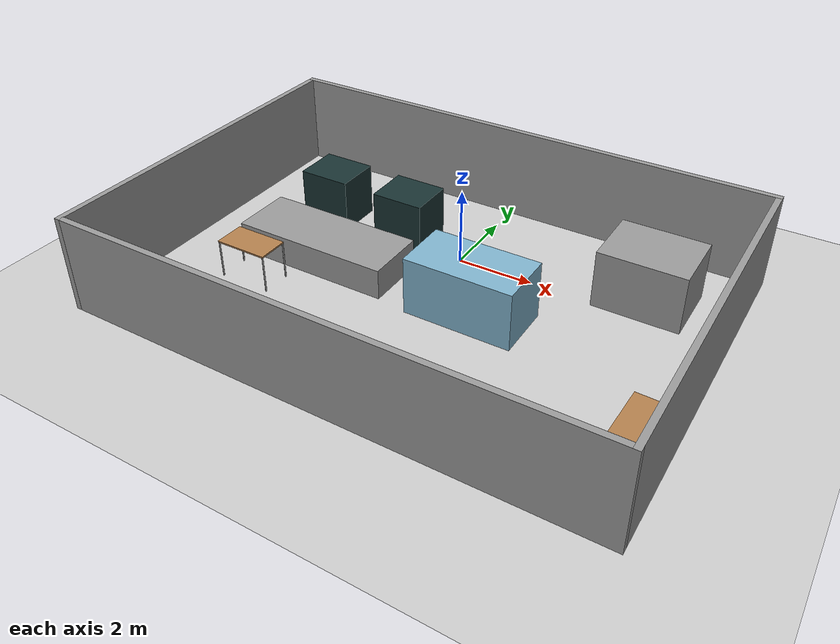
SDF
<sdf version="1.6">
 <world name="default">
  <light name="sun" type="directional">
   <pose>0 0 10 0 -0 0</pose>
   <diffuse>0.8 0.8 0.8 1</diffuse>
   <specular>0.1 0.1 0.1 1</specular>
   <attenuation>
    <range>1000</range>
    <constant>0.9</constant>
    <linear>0.01</linear>
    <quadratic>0.001</quadratic>
   </attenuation>
   <direction>-0.5 0.5 -1</direction>
  </light>
  <model name="ground_plane">
   <static>1</static>
   <link name="link">
    <collision name="collision">
     <geometry><plane><normal>0 0 1</normal><size>100 100</size></plane></geometry>
     <surface><friction><ode><mu>100</mu><mu2>50</mu2></ode></friction></surface>
    </collision>
    <visual name="visual">
     <cast_shadows>0</cast_shadows>
     <geometry><plane><normal>0 0 1</normal><size>100 100</size></plane></geometry>
     <material>
      <script><uri>file://media/materials/scripts/gazebo.material</uri><name>Gazebo/Grey</name></script>
     </material>
    </visual>
   </link>
  </model>
  <gravity>0 0 -9.8</gravity>
  <magnetic_field>6e-06 2.3e-05 -4.2e-05</magnetic_field>
  <atmosphere type="adiabatic"/>
  <physics name="default_physics" default="0" type="ode">
   <max_step_size>0.001</max_step_size>
   <real_time_factor>1</real_time_factor>
   <real_time_update_rate>1000</real_time_update_rate>
  </physics>
  <scene><ambient>0.4 0.4 0.4 1</ambient><background>0.7 0.7 0.7 1</background><shadows>1</shadows></scene>
  <spherical_coordinates>
   <surface_model>EARTH_WGS84</surface_model>
   <latitude_deg>0</latitude_deg>
   <longitude_deg>0</longitude_deg>
   <elevation>0</elevation>
   <heading_deg>0</heading_deg>
  </spherical_coordinates>
  <model name="table">
   <static>0</static>
   <link name="link">
    <collision name="surface">
     <pose>0 0 1 0 -0 0</pose>
     <geometry><box><size>1.5 0.8 0.03</size></box></geometry>
     <surface><friction><ode><mu>0.6</mu><mu2>0.6</mu2></ode></friction></surface>
    </collision>
    <visual name="visual1">
     <pose>0 0 1 0 -0 0</pose>
     <geometry><box><size>1.4 0.8 0.04</size></box></geometry>
     <material>
      <script><uri>file://media/materials/scripts/gazebo.material</uri><name>Gazebo/Wood</name></script>
     </material>
    </visual>
    <collision name="front_left_leg">
     <pose>0.68 0.38 0.5 0 -0 0</pose>
     <geometry><cylinder><radius>0.02</radius><length>1</length></cylinder></geometry>
    </collision>
    <visual name="front_left_leg">
     <pose>0.68 0.38 0.5 0 -0 0</pose>
     <geometry><cylinder><radius>0.02</radius><length>1</length></cylinder></geometry>
     <material>
      <script><uri>file://media/materials/scripts/gazebo.material</uri><name>Gazebo/Grey</name></script>
     </material>
    </visual>
    <collision name="front_right_leg">
     <pose>0.68 -0.38 0.5 0 -0 0</pose>
     <geometry><cylinder><radius>0.02</radius><length>1</length></cylinder></geometry>
    </collision>
    <visual name="front_right_leg">
     <pose>0.68 -0.38 0.5 0 -0 0</pose>
     <geometry><cylinder><radius>0.02</radius><length>1</length></cylinder></geometry>
     <material>
      <script><uri>file://media/materials/scripts/gazebo.material</uri><name>Gazebo/Grey</name></script>
     </material>
    </visual>
    <collision name="back_right_leg">
     <pose>-0.68 -0.38 0.5 0 -0 0</pose>
     <geometry><cylinder><radius>0.02</radius><length>1</length></cylinder></geometry>
    </collision>
    <visual name="back_right_leg">
     <pose>-0.68 -0.38 0.5 0 -0 0</pose>
     <geometry><cylinder><radius>0.02</radius><length>1</length></cylinder></geometry>
     <material>
      <script><uri>file://media/materials/scripts/gazebo.material</uri><name>Gazebo/Grey</name></script>
     </material>
    </visual>
    <collision name="back_left_leg">
     <pose>-0.68 0.38 0.5 0 -0 0</pose>
     <geometry><cylinder><radius>0.02</radius><length>1</length></cylinder></geometry>
    </collision>
    <visual name="back_left_leg">
     <pose>-0.68 0.38 0.5 0 -0 0</pose>
     <geometry><cylinder><radius>0.02</radius><length>1</length></cylinder></geometry>
     <material>
      <script><uri>file://media/materials/scripts/gazebo.material</uri><name>Gazebo/Grey</name></script>
     </material>
    </visual>
    <inertial>
     <inertia><ixx>1</ixx><ixy>0</ixy><ixz>0</ixz><iyy>1</iyy><iyz>0</iyz><izz>1</izz></inertia>
     <mass>1</mass>
    </inertial>
   </link>
   <pose>-4.07966 -3.28725 0 0 -0 0</pose>
  </model>
  <model name="Untitled">
   <pose>0.05186 -1.78661 0 0 -0 0</pose>
   <link name="Wall_49">
    <collision name="Wall_49_Collision">
     <geometry><box><size>9.5 0.15 2.5</size></box></geometry>
     <pose>0 0 1.25 0 -0 0</pose>
    </collision>
    <visual name="Wall_49_Visual">
     <pose>0 0 1.25 0 -0 0</pose>
     <geometry><box><size>9.5 0.15 2.5</size></box></geometry>
     <material>
      <script><uri>file://media/materials/scripts/gazebo.material</uri><name>Gazebo/Grey</name></script>
      <ambient>1 1 1 1</ambient>
     </material>
    </visual>
    <pose>-6.8 0 0 0 -0 1.5708</pose>
   </link>
   <link name="Wall_50">
    <collision name="Wall_50_Collision">
     <geometry><box><size>13.75 0.15 2.5</size></box></geometry>
     <pose>0 0 1.25 0 -0 0</pose>
    </collision>
    <visual name="Wall_50_Visual">
     <pose>0 0 1.25 0 -0 0</pose>
     <geometry><box><size>13.75 0.15 2.5</size></box></geometry>
     <material>
      <script><uri>file://media/materials/scripts/gazebo.material</uri><name>Gazebo/Grey</name></script>
      <ambient>1 1 1 1</ambient>
     </material>
    </visual>
    <pose>0 4.675 0 0 -0 0</pose>
   </link>
   <link name="Wall_51">
    <collision name="Wall_51_Collision">
     <geometry><box><size>9.5 0.15 2.5</size></box></geometry>
     <pose>0 0 1.25 0 -0 0</pose>
    </collision>
    <visual name="Wall_51_Visual">
     <pose>0 0 1.25 0 -0 0</pose>
     <geometry><box><size>9.5 0.15 2.5</size></box></geometry>
     <material>
      <script><uri>file://media/materials/scripts/gazebo.material</uri><name>Gazebo/Grey</name></script>
      <ambient>1 1 1 1</ambient>
     </material>
    </visual>
    <pose>6.8 0 0 0 0 -1.5708</pose>
   </link>
   <link name="Wall_52">
    <collision name="Wall_52_Collision">
     <geometry><box><size>13.75 0.15 2.5</size></box></geometry>
     <pose>0 0 1.25 0 -0 0</pose>
    </collision>
    <visual name="Wall_52_Visual">
     <pose>0 0 1.25 0 -0 0</pose>
     <geometry><box><size>13.75 0.15 2.5</size></box></geometry>
     <material>
      <script><uri>file://media/materials/scripts/gazebo.material</uri><name>Gazebo/Grey</name></script>
      <ambient>1 1 1 1</ambient>
     </material>
    </visual>
    <pose>0 -4.675 0 0 -0 3.14159</pose>
   </link>
   <static>1</static>
  </model>
  <model name="MC1">
   <link name="link_3">
    <pose>-1e-06 0 0 0 -0 0</pose>
    <inertial>
     <mass>1</mass>
     <inertia>
      <ixx>0.166667</ixx>
      <ixy>0</ixy>
      <ixz>0</ixz>
      <iyy>0.166667</iyy>
      <iyz>0</iyz>
      <izz>0.166667</izz>
     </inertia>
    </inertial>
    <visual name="visual">
     <geometry><box><size>2.2 1.7 2</size></box></geometry>
     <material>
      <lighting>1</lighting>
      <script><uri>file://media/materials/scripts/gazebo.material</uri><name>Gazebo/Grey</name></script>
      <ambient>0.3 0.3 0.3 1</ambient>
      <diffuse>0.7 0.7 0.7 1</diffuse>
      <specular>0.01 0.01 0.01 1</specular>
      <emissive>0 0 0 1</emissive>
      <shader type="vertex"><normal_map>__default__</normal_map></shader>
     </material>
    </visual>
    <collision name="collision">
     <geometry><box><size>2.2 1.7 2</size></box></geometry>
     <surface>
      <friction>
       <ode><mu>1</mu><mu2>1</mu2><fdir1>0 0 0</fdir1><slip1>0</slip1><slip2>0</slip2></ode>
       <torsional>
        <coefficient>1</coefficient>
        <patch_radius>0</patch_radius>
        <surface_radius>0</surface_radius>
        <use_patch_radius>1</use_patch_radius>
        <ode><slip>0</slip></ode>
       </torsional>
      </friction>
      <bounce><restitution_coefficient>0</restitution_coefficient><threshold>1e+06</threshold></bounce>
      <contact>
       <collide_without_contact>0</collide_without_contact>
       <collide_without_contact_bitmask>1</collide_without_contact_bitmask>
       <collide_bitmask>1</collide_bitmask>
       <ode>
        <soft_cfm>0</soft_cfm>
        <soft_erp>0.2</soft_erp>
        <kp>1e+13</kp>
        <kd>1</kd>
        <max_vel>0.01</max_vel>
        <min_depth>0</min_depth>
       </ode>
       <bullet>
        <split_impulse>1</split_impulse>
        <split_impulse_penetration_threshold>-0.01</split_impulse_penetration_threshold>
        <soft_cfm>0</soft_cfm>
        <soft_erp>0.2</soft_erp>
        <kp>1e+13</kp>
        <kd>1</kd>
       </bullet>
      </contact>
     </surface>
    </collision>
   </link>
   <static>0</static>
   <pose>4.69294 0.810814 0.5 0 -0 0</pose>
  </model>
  <model name="conveyor">
   <link name="link_4">
    <inertial>
     <mass>1</mass>
     <inertia>
      <ixx>0.166667</ixx>
      <ixy>0</ixy>
      <ixz>0</ixz>
      <iyy>0.166667</iyy>
      <iyz>0</iyz>
      <izz>0.166667</izz>
     </inertia>
    </inertial>
    <visual name="visual">
     <geometry><box><size>4.2 1.6 0.8</size></box></geometry>
     <material>
      <lighting>1</lighting>
      <script><uri>file://media/materials/scripts/gazebo.material</uri><name>Gazebo/Grey</name></script>
      <ambient>0.3 0.3 0.3 1</ambient>
      <diffuse>0.7 0.7 0.7 1</diffuse>
      <specular>0.01 0.01 0.01 1</specular>
      <emissive>0 0 0 1</emissive>
      <shader type="vertex"><normal_map>__default__</normal_map></shader>
     </material>
    </visual>
    <collision name="collision">
     <geometry><box><size>4.2 1.6 0.8</size></box></geometry>
     <surface>
      <friction>
       <ode><mu>1</mu><mu2>1</mu2><fdir1>0 0 0</fdir1><slip1>0</slip1><slip2>0</slip2></ode>
       <torsional>
        <coefficient>1</coefficient>
        <patch_radius>0</patch_radius>
        <surface_radius>0</surface_radius>
        <use_patch_radius>1</use_patch_radius>
        <ode><slip>0</slip></ode>
       </torsional>
      </friction>
      <bounce><restitution_coefficient>0</restitution_coefficient><threshold>1e+06</threshold></bounce>
      <contact>
       <collide_without_contact>0</collide_without_contact>
       <collide_without_contact_bitmask>1</collide_without_contact_bitmask>
       <collide_bitmask>1</collide_bitmask>
       <ode>
        <soft_cfm>0</soft_cfm>
        <soft_erp>0.2</soft_erp>
        <kp>1e+13</kp>
        <kd>1</kd>
        <max_vel>0.01</max_vel>
        <min_depth>0</min_depth>
       </ode>
       <bullet>
        <split_impulse>1</split_impulse>
        <split_impulse_penetration_threshold>-0.01</split_impulse_penetration_threshold>
        <soft_cfm>0</soft_cfm>
        <soft_erp>0.2</soft_erp>
        <kp>1e+13</kp>
        <kd>1</kd>
       </bullet>
      </contact>
     </surface>
    </collision>
   </link>
   <static>0</static>
   <pose>-2.88732 -1.81161 0.5 0 -0 0</pose>
  </model>
  <model name="ASRS">
   <link name="link_5">
    <inertial>
     <mass>1</mass>
     <inertia>
      <ixx>0.166667</ixx>
      <ixy>0</ixy>
      <ixz>0</ixz>
      <iyy>0.166667</iyy>
      <iyz>0</iyz>
      <izz>0.166667</izz>
     </inertia>
    </inertial>
    <visual name="visual">
     <geometry><box><size>2.8 1.5 2</size></box></geometry>
     <material>
      <lighting>1</lighting>
      <script><uri>file://media/materials/scripts/gazebo.material</uri><name>Gazebo/Grey</name></script>
      <ambient>0.5 0.7 0.8 1</ambient>
      <diffuse>0.7 0.7 0.7 1</diffuse>
      <specular>0.01 0.01 0.01 1</specular>
      <emissive>0 0 0 1</emissive>
      <shader type="vertex"><normal_map>__default__</normal_map></shader>
     </material>
    </visual>
    <collision name="collision">
     <geometry><box><size>2.8 1.5 2</size></box></geometry>
     <surface>
      <friction>
       <ode><mu>1</mu><mu2>1</mu2><fdir1>0 0 0</fdir1><slip1>0</slip1><slip2>0</slip2></ode>
       <torsional>
        <coefficient>1</coefficient>
        <patch_radius>0</patch_radius>
        <surface_radius>0</surface_radius>
        <use_patch_radius>1</use_patch_radius>
        <ode><slip>0</slip></ode>
       </torsional>
      </friction>
      <bounce><restitution_coefficient>0</restitution_coefficient><threshold>1e+06</threshold></bounce>
      <contact>
       <collide_without_contact>0</collide_without_contact>
       <collide_without_contact_bitmask>1</collide_without_contact_bitmask>
       <collide_bitmask>1</collide_bitmask>
       <ode>
        <soft_cfm>0</soft_cfm>
        <soft_erp>0.2</soft_erp>
        <kp>1e+13</kp>
        <kd>1</kd>
        <max_vel>0.01</max_vel>
        <min_depth>0</min_depth>
       </ode>
       <bullet>
        <split_impulse>1</split_impulse>
        <split_impulse_penetration_threshold>-0.01</split_impulse_penetration_threshold>
        <soft_cfm>0</soft_cfm>
        <soft_erp>0.2</soft_erp>
        <kp>1e+13</kp>
        <kd>1</kd>
       </bullet>
      </contact>
     </surface>
    </collision>
   </link>
   <static>0</static>
   <pose>1.31595 -1.85611 0.5 0 -0 0</pose>
  </model>
  <model name="table_0">
   <static>0</static>
   <link name="link">
    <collision name="surface">
     <pose>0 0 1 0 -0 0</pose>
     <geometry><box><size>1.5 0.8 0.03</size></box></geometry>
     <surface><friction><ode><mu>0.6</mu><mu2>0.6</mu2></ode></friction></surface>
    </collision>
    <visual name="visual1">
     <pose>0 0 1 0 -0 0</pose>
     <geometry><box><size>1.4 0.8 0.04</size></box></geometry>
     <material>
      <script><uri>file://media/materials/scripts/gazebo.material</uri><name>Gazebo/Wood</name></script>
     </material>
    </visual>
    <collision name="front_left_leg">
     <pose>0.68 0.38 0.5 0 -0 0</pose>
     <geometry><cylinder><radius>0.02</radius><length>1</length></cylinder></geometry>
    </collision>
    <visual name="front_left_leg">
     <pose>0.68 0.38 0.5 0 -0 0</pose>
     <geometry><cylinder><radius>0.02</radius><length>1</length></cylinder></geometry>
     <material>
      <script><uri>file://media/materials/scripts/gazebo.material</uri><name>Gazebo/Grey</name></script>
     </material>
    </visual>
    <collision name="front_right_leg">
     <pose>0.68 -0.38 0.5 0 -0 0</pose>
     <geometry><cylinder><radius>0.02</radius><length>1</length></cylinder></geometry>
    </collision>
    <visual name="front_right_leg">
     <pose>0.68 -0.38 0.5 0 -0 0</pose>
     <geometry><cylinder><radius>0.02</radius><length>1</length></cylinder></geometry>
     <material>
      <script><uri>file://media/materials/scripts/gazebo.material</uri><name>Gazebo/Grey</name></script>
     </material>
    </visual>
    <collision name="back_right_leg">
     <pose>-0.68 -0.38 0.5 0 -0 0</pose>
     <geometry><cylinder><radius>0.02</radius><length>1</length></cylinder></geometry>
    </collision>
    <visual name="back_right_leg">
     <pose>-0.68 -0.38 0.5 0 -0 0</pose>
     <geometry><cylinder><radius>0.02</radius><length>1</length></cylinder></geometry>
     <material>
      <script><uri>file://media/materials/scripts/gazebo.material</uri><name>Gazebo/Grey</name></script>
     </material>
    </visual>
    <collision name="back_left_leg">
     <pose>-0.68 0.38 0.5 0 -0 0</pose>
     <geometry><cylinder><radius>0.02</radius><length>1</length></cylinder></geometry>
    </collision>
    <visual name="back_left_leg">
     <pose>-0.68 0.38 0.5 0 -0 0</pose>
     <geometry><cylinder><radius>0.02</radius><length>1</length></cylinder></geometry>
     <material>
      <script><uri>file://media/materials/scripts/gazebo.material</uri><name>Gazebo/Grey</name></script>
     </material>
    </visual>
    <inertial>
     <inertia><ixx>1</ixx><ixy>0</ixy><ixz>0</ixz><iyy>1</iyy><iyz>0</iyz><izz>1</izz></inertia>
     <mass>1</mass>
    </inertial>
   </link>
   <pose>6.27922 -4.29907 0 -0.003528 -0.00011 -1.60192</pose>
  </model>
  <model name="machine">
   <link name="link_6">
    <inertial>
     <mass>1</mass>
     <inertia>
      <ixx>0.166667</ixx>
      <ixy>0</ixy>
      <ixz>0</ixz>
      <iyy>0.166667</iyy>
      <iyz>0</iyz>
      <izz>0.166667</izz>
     </inertia>
    </inertial>
    <visual name="visual">
     <geometry><box><size>1.4 1.2 1.8</size></box></geometry>
     <material>
      <lighting>1</lighting>
      <script><uri>file://media/materials/scripts/gazebo.material</uri><name>Gazebo/Grey</name></script>
      <ambient>0.1 0.2 0.2 1</ambient>
      <diffuse>0.7 0.7 0.7 1</diffuse>
      <specular>0.01 0.01 0.01 1</specular>
      <emissive>0 0 0 1</emissive>
      <shader type="vertex"><normal_map>__default__</normal_map></shader>
     </material>
    </visual>
    <collision name="collision">
     <geometry><box><size>1.4 1.2 1.8</size></box></geometry>
     <surface>
      <friction>
       <ode><mu>1</mu><mu2>1</mu2><fdir1>0 0 0</fdir1><slip1>0</slip1><slip2>0</slip2></ode>
       <torsional>
        <coefficient>1</coefficient>
        <patch_radius>0</patch_radius>
        <surface_radius>0</surface_radius>
        <use_patch_radius>1</use_patch_radius>
        <ode><slip>0</slip></ode>
       </torsional>
      </friction>
      <bounce><restitution_coefficient>0</restitution_coefficient><threshold>1e+06</threshold></bounce>
      <contact>
       <collide_without_contact>0</collide_without_contact>
       <collide_without_contact_bitmask>1</collide_without_contact_bitmask>
       <collide_bitmask>1</collide_bitmask>
       <ode>
        <soft_cfm>0</soft_cfm>
        <soft_erp>0.2</soft_erp>
        <kp>1e+13</kp>
        <kd>1</kd>
        <max_vel>0.01</max_vel>
        <min_depth>0</min_depth>
       </ode>
       <bullet>
        <split_impulse>1</split_impulse>
        <split_impulse_penetration_threshold>-0.01</split_impulse_penetration_threshold>
        <soft_cfm>0</soft_cfm>
        <soft_erp>0.2</soft_erp>
        <kp>1e+13</kp>
        <kd>1</kd>
       </bullet>
      </contact>
     </surface>
    </collision>
   </link>
   <static>0</static>
   <pose>-4.06847 0.316892 0.5 0 -0 0</pose>
  </model>
  <model name="machine_clone">
   <link name="link_6">
    <inertial>
     <mass>1</mass>
     <inertia>
      <ixx>0.166667</ixx>
      <ixy>0</ixy>
      <ixz>0</ixz>
      <iyy>0.166667</iyy>
      <iyz>0</iyz>
      <izz>0.166667</izz>
     </inertia>
    </inertial>
    <visual name="visual">
     <geometry><box><size>1.4 1.2 1.8</size></box></geometry>
     <material>
      <lighting>1</lighting>
      <script><uri>file://media/materials/scripts/gazebo.material</uri><name>Gazebo/Grey</name></script>
      <ambient>0.1 0.2 0.2 1</ambient>
      <diffuse>0.7 0.7 0.7 1</diffuse>
      <specular>0.01 0.01 0.01 1</specular>
      <emissive>0 0 0 1</emissive>
      <shader type="vertex"><normal_map>__default__</normal_map></shader>
     </material>
    </visual>
    <collision name="collision">
     <geometry><box><size>1.4 1.2 1.8</size></box></geometry>
     <surface>
      <friction>
       <ode><mu>1</mu><mu2>1</mu2><fdir1>0 0 0</fdir1><slip1>0</slip1><slip2>0</slip2></ode>
       <torsional>
        <coefficient>1</coefficient>
        <patch_radius>0</patch_radius>
        <surface_radius>0</surface_radius>
        <use_patch_radius>1</use_patch_radius>
        <ode><slip>0</slip></ode>
       </torsional>
      </friction>
      <bounce><restitution_coefficient>0</restitution_coefficient><threshold>1e+06</threshold></bounce>
      <contact>
       <collide_without_contact>0</collide_without_contact>
       <collide_without_contact_bitmask>1</collide_without_contact_bitmask>
       <collide_bitmask>1</collide_bitmask>
       <ode>
        <soft_cfm>0</soft_cfm>
        <soft_erp>0.2</soft_erp>
        <kp>1e+13</kp>
        <kd>1</kd>
        <max_vel>0.01</max_vel>
        <min_depth>0</min_depth>
       </ode>
       <bullet>
        <split_impulse>1</split_impulse>
        <split_impulse_penetration_threshold>-0.01</split_impulse_penetration_threshold>
        <soft_cfm>0</soft_cfm>
        <soft_erp>0.2</soft_erp>
        <kp>1e+13</kp>
        <kd>1</kd>
       </bullet>
      </contact>
     </surface>
    </collision>
   </link>
   <static>0</static>
   <pose>-1.73445 0.27263 0.5 0 -0 0</pose>
  </model>
 </world>
</sdf>
